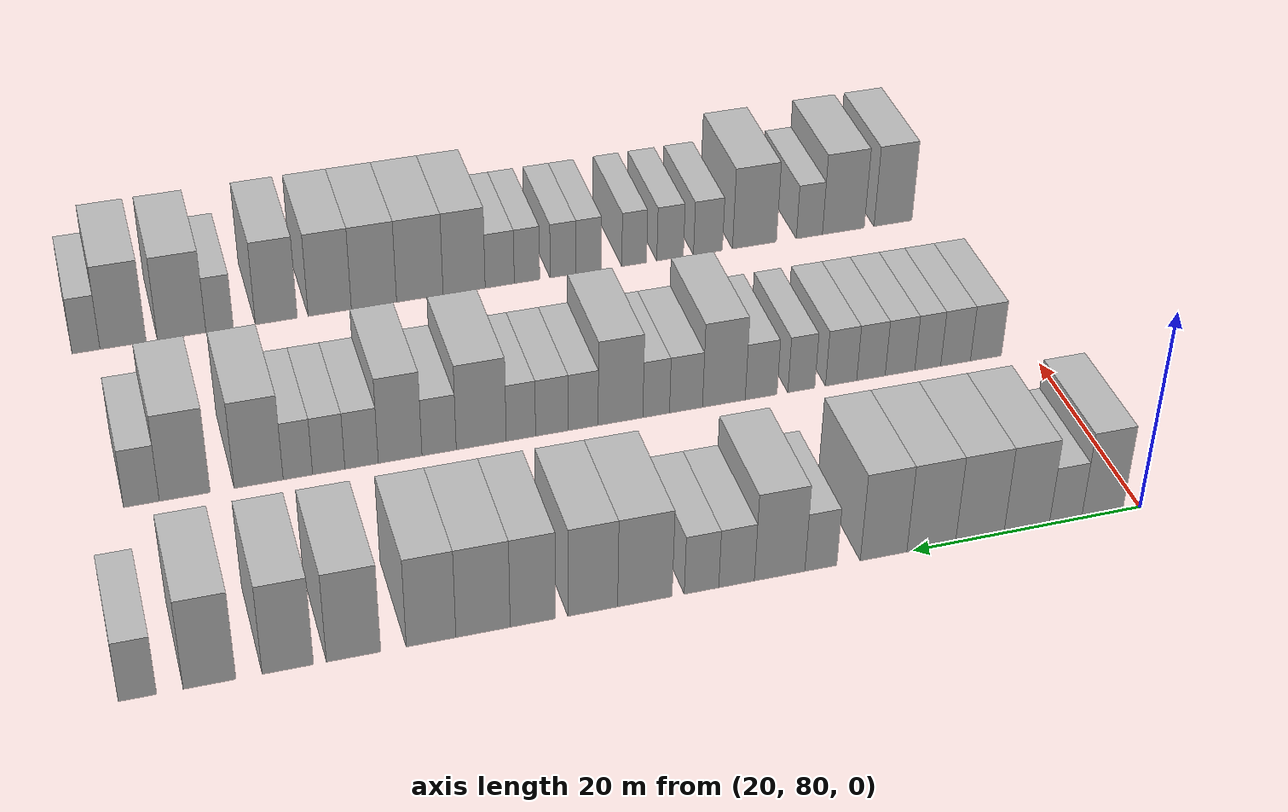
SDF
<sdf version="1.6">
 <world name="default">
  <model name="building_80">
   <static>1</static>
   <pose>25.0000 83.4481 0 0.000000 0.000000 0.000000</pose>
   <link name="link">
    <pose>0 0 4.50 0 0 0</pose>
    <collision name="collision"><geometry><box><size>10.0000 3.6763 9.0000</size></box></geometry></collision>
    <visual name="visual">
     <cast_shadows>0</cast_shadows>
     <geometry><box><size>10.0000 3.6763 9.0000</size></box></geometry>
     <material>
      <script>
       <uri>model://HANNAS_wall/materials/scripts</uri>
       <uri>model://HANNAS_wall/materials/textures</uri>
       <name>vrc/HANNAS_wall</name>
      </script>
     </material>
    </visual>
   </link>
  </model>
  <model name="building_81">
   <static>1</static>
   <pose>25.0000 86.7174 0 0.000000 0.000000 0.000000</pose>
   <link name="link">
    <pose>0 0 3.00 0 0 0</pose>
    <collision name="collision"><geometry><box><size>10.0000 2.8622 6.0000</size></box></geometry></collision>
    <visual name="visual">
     <cast_shadows>0</cast_shadows>
     <geometry><box><size>10.0000 2.8622 6.0000</size></box></geometry>
     <material>
      <script>
       <uri>model://HANNAS_wall/materials/scripts</uri>
       <uri>model://HANNAS_wall/materials/textures</uri>
       <name>vrc/HANNAS_wall</name>
      </script>
     </material>
    </visual>
   </link>
  </model>
  <model name="building_82">
   <static>1</static>
   <pose>25.0000 90.1437 0 0.000000 0.000000 0.000000</pose>
   <link name="link">
    <pose>0 0 4.50 0 0 0</pose>
    <collision name="collision"><geometry><box><size>10.0000 3.9904 9.0000</size></box></geometry></collision>
    <visual name="visual">
     <cast_shadows>0</cast_shadows>
     <geometry><box><size>10.0000 3.9904 9.0000</size></box></geometry>
     <material>
      <script>
       <uri>model://HANNAS_wall/materials/scripts</uri>
       <uri>model://HANNAS_wall/materials/textures</uri>
       <name>vrc/HANNAS_wall</name>
      </script>
     </material>
    </visual>
   </link>
  </model>
  <model name="building_83">
   <static>1</static>
   <pose>25.0000 94.2504 0 0.000000 0.000000 0.000000</pose>
   <link name="link">
    <pose>0 0 4.50 0 0 0</pose>
    <collision name="collision"><geometry><box><size>10.0000 4.2230 9.0000</size></box></geometry></collision>
    <visual name="visual">
     <cast_shadows>0</cast_shadows>
     <geometry><box><size>10.0000 4.2230 9.0000</size></box></geometry>
     <material>
      <script>
       <uri>model://HANNAS_wall/materials/scripts</uri>
       <uri>model://HANNAS_wall/materials/textures</uri>
       <name>vrc/HANNAS_wall</name>
      </script>
     </material>
    </visual>
   </link>
  </model>
  <model name="building_84">
   <static>1</static>
   <pose>25.0000 98.4675 0 0.000000 0.000000 0.000000</pose>
   <link name="link">
    <pose>0 0 4.50 0 0 0</pose>
    <collision name="collision"><geometry><box><size>10.0000 4.2113 9.0000</size></box></geometry></collision>
    <visual name="visual">
     <cast_shadows>0</cast_shadows>
     <geometry><box><size>10.0000 4.2113 9.0000</size></box></geometry>
     <material>
      <script>
       <uri>model://HANNAS_wall/materials/scripts</uri>
       <uri>model://HANNAS_wall/materials/textures</uri>
       <name>vrc/HANNAS_wall</name>
      </script>
     </material>
    </visual>
   </link>
  </model>
  <model name="building_85">
   <static>1</static>
   <pose>25.0000 102.5696 0 0.000000 0.000000 0.000000</pose>
   <link name="link">
    <pose>0 0 4.50 0 0 0</pose>
    <collision name="collision"><geometry><box><size>10.0000 3.9929 9.0000</size></box></geometry></collision>
    <visual name="visual">
     <cast_shadows>0</cast_shadows>
     <geometry><box><size>10.0000 3.9929 9.0000</size></box></geometry>
     <material>
      <script>
       <uri>model://HANNAS_wall/materials/scripts</uri>
       <uri>model://HANNAS_wall/materials/textures</uri>
       <name>vrc/HANNAS_wall</name>
      </script>
     </material>
    </visual>
   </link>
  </model>
  <model name="building_86">
   <static>1</static>
   <pose>25.0000 107.9220 0 0.000000 0.000000 0.000000</pose>
   <link name="link">
    <pose>0 0 3.00 0 0 0</pose>
    <collision name="collision"><geometry><box><size>10.0000 2.7118 6.0000</size></box></geometry></collision>
    <visual name="visual">
     <cast_shadows>0</cast_shadows>
     <geometry><box><size>10.0000 2.7118 6.0000</size></box></geometry>
     <material>
      <script>
       <uri>model://HANNAS_wall/materials/scripts</uri>
       <uri>model://HANNAS_wall/materials/textures</uri>
       <name>vrc/HANNAS_wall</name>
      </script>
     </material>
    </visual>
   </link>
  </model>
  <model name="building_87">
   <static>1</static>
   <pose>25.0000 111.4040 0 0.000000 0.000000 0.000000</pose>
   <link name="link">
    <pose>0 0 4.50 0 0 0</pose>
    <collision name="collision"><geometry><box><size>10.0000 4.2523 9.0000</size></box></geometry></collision>
    <visual name="visual">
     <cast_shadows>0</cast_shadows>
     <geometry><box><size>10.0000 4.2523 9.0000</size></box></geometry>
     <material>
      <script>
       <uri>model://HANNAS_wall/materials/scripts</uri>
       <uri>model://HANNAS_wall/materials/textures</uri>
       <name>vrc/HANNAS_wall</name>
      </script>
     </material>
    </visual>
   </link>
  </model>
  <model name="building_88">
   <static>1</static>
   <pose>25.0000 115.0146 0 0.000000 0.000000 0.000000</pose>
   <link name="link">
    <pose>0 0 3.00 0 0 0</pose>
    <collision name="collision"><geometry><box><size>10.0000 2.9690 6.0000</size></box></geometry></collision>
    <visual name="visual">
     <cast_shadows>0</cast_shadows>
     <geometry><box><size>10.0000 2.9690 6.0000</size></box></geometry>
     <material>
      <script>
       <uri>model://HANNAS_wall/materials/scripts</uri>
       <uri>model://HANNAS_wall/materials/textures</uri>
       <name>vrc/HANNAS_wall</name>
      </script>
     </material>
    </visual>
   </link>
  </model>
  <model name="building_89">
   <static>1</static>
   <pose>25.0000 117.9294 0 0.000000 0.000000 0.000000</pose>
   <link name="link">
    <pose>0 0 3.00 0 0 0</pose>
    <collision name="collision"><geometry><box><size>10.0000 2.8605 6.0000</size></box></geometry></collision>
    <visual name="visual">
     <cast_shadows>0</cast_shadows>
     <geometry><box><size>10.0000 2.8605 6.0000</size></box></geometry>
     <material>
      <script>
       <uri>model://HANNAS_wall/materials/scripts</uri>
       <uri>model://HANNAS_wall/materials/textures</uri>
       <name>vrc/HANNAS_wall</name>
      </script>
     </material>
    </visual>
   </link>
  </model>
  <model name="building_90">
   <static>1</static>
   <pose>25.0000 122.5967 0 0.000000 0.000000 0.000000</pose>
   <link name="link">
    <pose>0 0 4.50 0 0 0</pose>
    <collision name="collision"><geometry><box><size>10.0000 4.4741 9.0000</size></box></geometry></collision>
    <visual name="visual">
     <cast_shadows>0</cast_shadows>
     <geometry><box><size>10.0000 4.4741 9.0000</size></box></geometry>
     <material>
      <script>
       <uri>model://HANNAS_wall/materials/scripts</uri>
       <uri>model://HANNAS_wall/materials/textures</uri>
       <name>vrc/HANNAS_wall</name>
      </script>
     </material>
    </visual>
   </link>
  </model>
  <model name="building_91">
   <static>1</static>
   <pose>25.0000 126.8560 0 0.000000 0.000000 0.000000</pose>
   <link name="link">
    <pose>0 0 4.50 0 0 0</pose>
    <collision name="collision"><geometry><box><size>10.0000 4.0445 9.0000</size></box></geometry></collision>
    <visual name="visual">
     <cast_shadows>0</cast_shadows>
     <geometry><box><size>10.0000 4.0445 9.0000</size></box></geometry>
     <material>
      <script>
       <uri>model://HANNAS_wall/materials/scripts</uri>
       <uri>model://HANNAS_wall/materials/textures</uri>
       <name>vrc/HANNAS_wall</name>
      </script>
     </material>
    </visual>
   </link>
  </model>
  <model name="building_92">
   <static>1</static>
   <pose>25.0000 131.7005 0 0.000000 0.000000 0.000000</pose>
   <link name="link">
    <pose>0 0 4.50 0 0 0</pose>
    <collision name="collision"><geometry><box><size>10.0000 3.6444 9.0000</size></box></geometry></collision>
    <visual name="visual">
     <cast_shadows>0</cast_shadows>
     <geometry><box><size>10.0000 3.6444 9.0000</size></box></geometry>
     <material>
      <script>
       <uri>model://HANNAS_wall/materials/scripts</uri>
       <uri>model://HANNAS_wall/materials/textures</uri>
       <name>vrc/HANNAS_wall</name>
      </script>
     </material>
    </visual>
   </link>
  </model>
  <model name="building_93">
   <static>1</static>
   <pose>25.0000 135.6857 0 0.000000 0.000000 0.000000</pose>
   <link name="link">
    <pose>0 0 4.50 0 0 0</pose>
    <collision name="collision"><geometry><box><size>10.0000 4.3261 9.0000</size></box></geometry></collision>
    <visual name="visual">
     <cast_shadows>0</cast_shadows>
     <geometry><box><size>10.0000 4.3261 9.0000</size></box></geometry>
     <material>
      <script>
       <uri>model://HANNAS_wall/materials/scripts</uri>
       <uri>model://HANNAS_wall/materials/textures</uri>
       <name>vrc/HANNAS_wall</name>
      </script>
     </material>
    </visual>
   </link>
  </model>
  <model name="building_94">
   <static>1</static>
   <pose>25.0000 139.8107 0 0.000000 0.000000 0.000000</pose>
   <link name="link">
    <pose>0 0 4.50 0 0 0</pose>
    <collision name="collision"><geometry><box><size>10.0000 3.9239 9.0000</size></box></geometry></collision>
    <visual name="visual">
     <cast_shadows>0</cast_shadows>
     <geometry><box><size>10.0000 3.9239 9.0000</size></box></geometry>
     <material>
      <script>
       <uri>model://HANNAS_wall/materials/scripts</uri>
       <uri>model://HANNAS_wall/materials/textures</uri>
       <name>vrc/HANNAS_wall</name>
      </script>
     </material>
    </visual>
   </link>
  </model>
  <model name="building_95">
   <static>1</static>
   <pose>25.0000 145.8887 0 0.000000 0.000000 0.000000</pose>
   <link name="link">
    <pose>0 0 4.50 0 0 0</pose>
    <collision name="collision"><geometry><box><size>10.0000 4.2321 9.0000</size></box></geometry></collision>
    <visual name="visual">
     <cast_shadows>0</cast_shadows>
     <geometry><box><size>10.0000 4.2321 9.0000</size></box></geometry>
     <material>
      <script>
       <uri>model://HANNAS_wall/materials/scripts</uri>
       <uri>model://HANNAS_wall/materials/textures</uri>
       <name>vrc/HANNAS_wall</name>
      </script>
     </material>
    </visual>
   </link>
  </model>
  <model name="building_96">
   <static>1</static>
   <pose>25.0000 150.9834 0 0.000000 0.000000 0.000000</pose>
   <link name="link">
    <pose>0 0 4.50 0 0 0</pose>
    <collision name="collision"><geometry><box><size>10.0000 3.9573 9.0000</size></box></geometry></collision>
    <visual name="visual">
     <cast_shadows>0</cast_shadows>
     <geometry><box><size>10.0000 3.9573 9.0000</size></box></geometry>
     <material>
      <script>
       <uri>model://HANNAS_wall/materials/scripts</uri>
       <uri>model://HANNAS_wall/materials/textures</uri>
       <name>vrc/HANNAS_wall</name>
      </script>
     </material>
    </visual>
   </link>
  </model>
  <model name="building_97">
   <static>1</static>
   <pose>25.0000 156.9693 0 0.000000 0.000000 0.000000</pose>
   <link name="link">
    <pose>0 0 4.50 0 0 0</pose>
    <collision name="collision"><geometry><box><size>10.0000 4.0143 9.0000</size></box></geometry></collision>
    <visual name="visual">
     <cast_shadows>0</cast_shadows>
     <geometry><box><size>10.0000 4.0143 9.0000</size></box></geometry>
     <material>
      <script>
       <uri>model://HANNAS_wall/materials/scripts</uri>
       <uri>model://HANNAS_wall/materials/textures</uri>
       <name>vrc/HANNAS_wall</name>
      </script>
     </material>
    </visual>
   </link>
  </model>
  <model name="building_98">
   <static>1</static>
   <pose>25.0000 162.4192 0 0.000000 0.000000 0.000000</pose>
   <link name="link">
    <pose>0 0 3.00 0 0 0</pose>
    <collision name="collision"><geometry><box><size>10.0000 2.8855 6.0000</size></box></geometry></collision>
    <visual name="visual">
     <cast_shadows>0</cast_shadows>
     <geometry><box><size>10.0000 2.8855 6.0000</size></box></geometry>
     <material>
      <script>
       <uri>model://HANNAS_wall/materials/scripts</uri>
       <uri>model://HANNAS_wall/materials/textures</uri>
       <name>vrc/HANNAS_wall</name>
      </script>
     </material>
    </visual>
   </link>
  </model>
  <model name="building_210">
   <static>1</static>
   <pose>47.0000 84.3478 0 0.000000 0.000000 0.000000</pose>
   <link name="link">
    <pose>0 0 3.00 0 0 0</pose>
    <collision name="collision"><geometry><box><size>10.0000 2.9716 6.0000</size></box></geometry></collision>
    <visual name="visual">
     <cast_shadows>0</cast_shadows>
     <geometry><box><size>10.0000 2.9716 6.0000</size></box></geometry>
     <material>
      <script>
       <uri>model://HANNAS_wall/materials/scripts</uri>
       <uri>model://HANNAS_wall/materials/textures</uri>
       <name>vrc/HANNAS_wall</name>
      </script>
     </material>
    </visual>
   </link>
  </model>
  <model name="building_211">
   <static>1</static>
   <pose>47.0000 87.2506 0 0.000000 0.000000 0.000000</pose>
   <link name="link">
    <pose>0 0 3.00 0 0 0</pose>
    <collision name="collision"><geometry><box><size>10.0000 2.8339 6.0000</size></box></geometry></collision>
    <visual name="visual">
     <cast_shadows>0</cast_shadows>
     <geometry><box><size>10.0000 2.8339 6.0000</size></box></geometry>
     <material>
      <script>
       <uri>model://HANNAS_wall/materials/scripts</uri>
       <uri>model://HANNAS_wall/materials/textures</uri>
       <name>vrc/HANNAS_wall</name>
      </script>
     </material>
    </visual>
   </link>
  </model>
  <model name="building_212">
   <static>1</static>
   <pose>47.0000 89.8965 0 0.000000 0.000000 0.000000</pose>
   <link name="link">
    <pose>0 0 3.00 0 0 0</pose>
    <collision name="collision"><geometry><box><size>10.0000 2.4578 6.0000</size></box></geometry></collision>
    <visual name="visual">
     <cast_shadows>0</cast_shadows>
     <geometry><box><size>10.0000 2.4578 6.0000</size></box></geometry>
     <material>
      <script>
       <uri>model://HANNAS_wall/materials/scripts</uri>
       <uri>model://HANNAS_wall/materials/textures</uri>
       <name>vrc/HANNAS_wall</name>
      </script>
     </material>
    </visual>
   </link>
  </model>
  <model name="building_213">
   <static>1</static>
   <pose>47.0000 92.5211 0 0.000000 0.000000 0.000000</pose>
   <link name="link">
    <pose>0 0 3.00 0 0 0</pose>
    <collision name="collision"><geometry><box><size>10.0000 2.7914 6.0000</size></box></geometry></collision>
    <visual name="visual">
     <cast_shadows>0</cast_shadows>
     <geometry><box><size>10.0000 2.7914 6.0000</size></box></geometry>
     <material>
      <script>
       <uri>model://HANNAS_wall/materials/scripts</uri>
       <uri>model://HANNAS_wall/materials/textures</uri>
       <name>vrc/HANNAS_wall</name>
      </script>
     </material>
    </visual>
   </link>
  </model>
  <model name="building_214">
   <static>1</static>
   <pose>47.0000 95.2539 0 0.000000 0.000000 0.000000</pose>
   <link name="link">
    <pose>0 0 3.00 0 0 0</pose>
    <collision name="collision"><geometry><box><size>10.0000 2.6743 6.0000</size></box></geometry></collision>
    <visual name="visual">
     <cast_shadows>0</cast_shadows>
     <geometry><box><size>10.0000 2.6743 6.0000</size></box></geometry>
     <material>
      <script>
       <uri>model://HANNAS_wall/materials/scripts</uri>
       <uri>model://HANNAS_wall/materials/textures</uri>
       <name>vrc/HANNAS_wall</name>
      </script>
     </material>
    </visual>
   </link>
  </model>
  <model name="building_215">
   <static>1</static>
   <pose>47.0000 98.0430 0 0.000000 0.000000 0.000000</pose>
   <link name="link">
    <pose>0 0 3.00 0 0 0</pose>
    <collision name="collision"><geometry><box><size>10.0000 2.9041 6.0000</size></box></geometry></collision>
    <visual name="visual">
     <cast_shadows>0</cast_shadows>
     <geometry><box><size>10.0000 2.9041 6.0000</size></box></geometry>
     <material>
      <script>
       <uri>model://HANNAS_wall/materials/scripts</uri>
       <uri>model://HANNAS_wall/materials/textures</uri>
       <name>vrc/HANNAS_wall</name>
      </script>
     </material>
    </visual>
   </link>
  </model>
  <model name="building_216">
   <static>1</static>
   <pose>47.0000 101.7422 0 0.000000 0.000000 0.000000</pose>
   <link name="link">
    <pose>0 0 3.00 0 0 0</pose>
    <collision name="collision"><geometry><box><size>10.0000 2.4943 6.0000</size></box></geometry></collision>
    <visual name="visual">
     <cast_shadows>0</cast_shadows>
     <geometry><box><size>10.0000 2.4943 6.0000</size></box></geometry>
     <material>
      <script>
       <uri>model://HANNAS_wall/materials/scripts</uri>
       <uri>model://HANNAS_wall/materials/textures</uri>
       <name>vrc/HANNAS_wall</name>
      </script>
     </material>
    </visual>
   </link>
  </model>
  <model name="building_217">
   <static>1</static>
   <pose>47.0000 105.4523 0 0.000000 0.000000 0.000000</pose>
   <link name="link">
    <pose>0 0 3.00 0 0 0</pose>
    <collision name="collision"><geometry><box><size>10.0000 2.9258 6.0000</size></box></geometry></collision>
    <visual name="visual">
     <cast_shadows>0</cast_shadows>
     <geometry><box><size>10.0000 2.9258 6.0000</size></box></geometry>
     <material>
      <script>
       <uri>model://HANNAS_wall/materials/scripts</uri>
       <uri>model://HANNAS_wall/materials/textures</uri>
       <name>vrc/HANNAS_wall</name>
      </script>
     </material>
    </visual>
   </link>
  </model>
  <model name="building_218">
   <static>1</static>
   <pose>47.0000 108.8676 0 0.000000 0.000000 0.000000</pose>
   <link name="link">
    <pose>0 0 4.50 0 0 0</pose>
    <collision name="collision"><geometry><box><size>10.0000 3.9047 9.0000</size></box></geometry></collision>
    <visual name="visual">
     <cast_shadows>0</cast_shadows>
     <geometry><box><size>10.0000 3.9047 9.0000</size></box></geometry>
     <material>
      <script>
       <uri>model://HANNAS_wall/materials/scripts</uri>
       <uri>model://HANNAS_wall/materials/textures</uri>
       <name>vrc/HANNAS_wall</name>
      </script>
     </material>
    </visual>
   </link>
  </model>
  <model name="building_219">
   <static>1</static>
   <pose>47.0000 112.3148 0 0.000000 0.000000 0.000000</pose>
   <link name="link">
    <pose>0 0 3.00 0 0 0</pose>
    <collision name="collision"><geometry><box><size>10.0000 2.9899 6.0000</size></box></geometry></collision>
    <visual name="visual">
     <cast_shadows>0</cast_shadows>
     <geometry><box><size>10.0000 2.9899 6.0000</size></box></geometry>
     <material>
      <script>
       <uri>model://HANNAS_wall/materials/scripts</uri>
       <uri>model://HANNAS_wall/materials/textures</uri>
       <name>vrc/HANNAS_wall</name>
      </script>
     </material>
    </visual>
   </link>
  </model>
  <model name="building_220">
   <static>1</static>
   <pose>47.0000 115.0148 0 0.000000 0.000000 0.000000</pose>
   <link name="link">
    <pose>0 0 3.00 0 0 0</pose>
    <collision name="collision"><geometry><box><size>10.0000 2.4101 6.0000</size></box></geometry></collision>
    <visual name="visual">
     <cast_shadows>0</cast_shadows>
     <geometry><box><size>10.0000 2.4101 6.0000</size></box></geometry>
     <material>
      <script>
       <uri>model://HANNAS_wall/materials/scripts</uri>
       <uri>model://HANNAS_wall/materials/textures</uri>
       <name>vrc/HANNAS_wall</name>
      </script>
     </material>
    </visual>
   </link>
  </model>
  <model name="building_221">
   <static>1</static>
   <pose>47.0000 118.2244 0 0.000000 0.000000 0.000000</pose>
   <link name="link">
    <pose>0 0 4.50 0 0 0</pose>
    <collision name="collision"><geometry><box><size>10.0000 4.0092 9.0000</size></box></geometry></collision>
    <visual name="visual">
     <cast_shadows>0</cast_shadows>
     <geometry><box><size>10.0000 4.0092 9.0000</size></box></geometry>
     <material>
      <script>
       <uri>model://HANNAS_wall/materials/scripts</uri>
       <uri>model://HANNAS_wall/materials/textures</uri>
       <name>vrc/HANNAS_wall</name>
      </script>
     </material>
    </visual>
   </link>
  </model>
  <model name="building_222">
   <static>1</static>
   <pose>47.0000 121.5536 0 0.000000 0.000000 0.000000</pose>
   <link name="link">
    <pose>0 0 3.00 0 0 0</pose>
    <collision name="collision"><geometry><box><size>10.0000 2.6492 6.0000</size></box></geometry></collision>
    <visual name="visual">
     <cast_shadows>0</cast_shadows>
     <geometry><box><size>10.0000 2.6492 6.0000</size></box></geometry>
     <material>
      <script>
       <uri>model://HANNAS_wall/materials/scripts</uri>
       <uri>model://HANNAS_wall/materials/textures</uri>
       <name>vrc/HANNAS_wall</name>
      </script>
     </material>
    </visual>
   </link>
  </model>
  <model name="building_223">
   <static>1</static>
   <pose>47.0000 124.3264 0 0.000000 0.000000 0.000000</pose>
   <link name="link">
    <pose>0 0 3.00 0 0 0</pose>
    <collision name="collision"><geometry><box><size>10.0000 2.8962 6.0000</size></box></geometry></collision>
    <visual name="visual">
     <cast_shadows>0</cast_shadows>
     <geometry><box><size>10.0000 2.8962 6.0000</size></box></geometry>
     <material>
      <script>
       <uri>model://HANNAS_wall/materials/scripts</uri>
       <uri>model://HANNAS_wall/materials/textures</uri>
       <name>vrc/HANNAS_wall</name>
      </script>
     </material>
    </visual>
   </link>
  </model>
  <model name="building_224">
   <static>1</static>
   <pose>47.0000 127.0630 0 0.000000 0.000000 0.000000</pose>
   <link name="link">
    <pose>0 0 3.00 0 0 0</pose>
    <collision name="collision"><geometry><box><size>10.0000 2.5771 6.0000</size></box></geometry></collision>
    <visual name="visual">
     <cast_shadows>0</cast_shadows>
     <geometry><box><size>10.0000 2.5771 6.0000</size></box></geometry>
     <material>
      <script>
       <uri>model://HANNAS_wall/materials/scripts</uri>
       <uri>model://HANNAS_wall/materials/textures</uri>
       <name>vrc/HANNAS_wall</name>
      </script>
     </material>
    </visual>
   </link>
  </model>
  <model name="building_225">
   <static>1</static>
   <pose>47.0000 130.5362 0 0.000000 0.000000 0.000000</pose>
   <link name="link">
    <pose>0 0 4.50 0 0 0</pose>
    <collision name="collision"><geometry><box><size>10.0000 4.3693 9.0000</size></box></geometry></collision>
    <visual name="visual">
     <cast_shadows>0</cast_shadows>
     <geometry><box><size>10.0000 4.3693 9.0000</size></box></geometry>
     <material>
      <script>
       <uri>model://HANNAS_wall/materials/scripts</uri>
       <uri>model://HANNAS_wall/materials/textures</uri>
       <name>vrc/HANNAS_wall</name>
      </script>
     </material>
    </visual>
   </link>
  </model>
  <model name="building_226">
   <static>1</static>
   <pose>47.0000 134.2073 0 0.000000 0.000000 0.000000</pose>
   <link name="link">
    <pose>0 0 3.00 0 0 0</pose>
    <collision name="collision"><geometry><box><size>10.0000 2.9730 6.0000</size></box></geometry></collision>
    <visual name="visual">
     <cast_shadows>0</cast_shadows>
     <geometry><box><size>10.0000 2.9730 6.0000</size></box></geometry>
     <material>
      <script>
       <uri>model://HANNAS_wall/materials/scripts</uri>
       <uri>model://HANNAS_wall/materials/textures</uri>
       <name>vrc/HANNAS_wall</name>
      </script>
     </material>
    </visual>
   </link>
  </model>
  <model name="building_227">
   <static>1</static>
   <pose>47.0000 137.5719 0 0.000000 0.000000 0.000000</pose>
   <link name="link">
    <pose>0 0 4.50 0 0 0</pose>
    <collision name="collision"><geometry><box><size>10.0000 3.7562 9.0000</size></box></geometry></collision>
    <visual name="visual">
     <cast_shadows>0</cast_shadows>
     <geometry><box><size>10.0000 3.7562 9.0000</size></box></geometry>
     <material>
      <script>
       <uri>model://HANNAS_wall/materials/scripts</uri>
       <uri>model://HANNAS_wall/materials/textures</uri>
       <name>vrc/HANNAS_wall</name>
      </script>
     </material>
    </visual>
   </link>
  </model>
  <model name="building_228">
   <static>1</static>
   <pose>47.0000 140.8827 0 0.000000 0.000000 0.000000</pose>
   <link name="link">
    <pose>0 0 3.00 0 0 0</pose>
    <collision name="collision"><geometry><box><size>10.0000 2.8653 6.0000</size></box></geometry></collision>
    <visual name="visual">
     <cast_shadows>0</cast_shadows>
     <geometry><box><size>10.0000 2.8653 6.0000</size></box></geometry>
     <material>
      <script>
       <uri>model://HANNAS_wall/materials/scripts</uri>
       <uri>model://HANNAS_wall/materials/textures</uri>
       <name>vrc/HANNAS_wall</name>
      </script>
     </material>
    </visual>
   </link>
  </model>
  <model name="building_229">
   <static>1</static>
   <pose>47.0000 143.6878 0 0.000000 0.000000 0.000000</pose>
   <link name="link">
    <pose>0 0 3.00 0 0 0</pose>
    <collision name="collision"><geometry><box><size>10.0000 2.7450 6.0000</size></box></geometry></collision>
    <visual name="visual">
     <cast_shadows>0</cast_shadows>
     <geometry><box><size>10.0000 2.7450 6.0000</size></box></geometry>
     <material>
      <script>
       <uri>model://HANNAS_wall/materials/scripts</uri>
       <uri>model://HANNAS_wall/materials/textures</uri>
       <name>vrc/HANNAS_wall</name>
      </script>
     </material>
    </visual>
   </link>
  </model>
  <model name="building_230">
   <static>1</static>
   <pose>47.0000 146.3057 0 0.000000 0.000000 0.000000</pose>
   <link name="link">
    <pose>0 0 3.00 0 0 0</pose>
    <collision name="collision"><geometry><box><size>10.0000 2.4907 6.0000</size></box></geometry></collision>
    <visual name="visual">
     <cast_shadows>0</cast_shadows>
     <geometry><box><size>10.0000 2.4907 6.0000</size></box></geometry>
     <material>
      <script>
       <uri>model://HANNAS_wall/materials/scripts</uri>
       <uri>model://HANNAS_wall/materials/textures</uri>
       <name>vrc/HANNAS_wall</name>
      </script>
     </material>
    </visual>
   </link>
  </model>
  <model name="building_231">
   <static>1</static>
   <pose>47.0000 149.6123 0 0.000000 0.000000 0.000000</pose>
   <link name="link">
    <pose>0 0 4.50 0 0 0</pose>
    <collision name="collision"><geometry><box><size>10.0000 4.1226 9.0000</size></box></geometry></collision>
    <visual name="visual">
     <cast_shadows>0</cast_shadows>
     <geometry><box><size>10.0000 4.1226 9.0000</size></box></geometry>
     <material>
      <script>
       <uri>model://HANNAS_wall/materials/scripts</uri>
       <uri>model://HANNAS_wall/materials/textures</uri>
       <name>vrc/HANNAS_wall</name>
      </script>
     </material>
    </visual>
   </link>
  </model>
  <model name="building_232">
   <static>1</static>
   <pose>47.0000 155.7840 0 0.000000 0.000000 0.000000</pose>
   <link name="link">
    <pose>0 0 4.50 0 0 0</pose>
    <collision name="collision"><geometry><box><size>10.0000 4.2209 9.0000</size></box></geometry></collision>
    <visual name="visual">
     <cast_shadows>0</cast_shadows>
     <geometry><box><size>10.0000 4.2209 9.0000</size></box></geometry>
     <material>
      <script>
       <uri>model://HANNAS_wall/materials/scripts</uri>
       <uri>model://HANNAS_wall/materials/textures</uri>
       <name>vrc/HANNAS_wall</name>
      </script>
     </material>
    </visual>
   </link>
  </model>
  <model name="building_233">
   <static>1</static>
   <pose>47.0000 159.3688 0 0.000000 0.000000 0.000000</pose>
   <link name="link">
    <pose>0 0 3.00 0 0 0</pose>
    <collision name="collision"><geometry><box><size>10.0000 2.9486 6.0000</size></box></geometry></collision>
    <visual name="visual">
     <cast_shadows>0</cast_shadows>
     <geometry><box><size>10.0000 2.9486 6.0000</size></box></geometry>
     <material>
      <script>
       <uri>model://HANNAS_wall/materials/scripts</uri>
       <uri>model://HANNAS_wall/materials/textures</uri>
       <name>vrc/HANNAS_wall</name>
      </script>
     </material>
    </visual>
   </link>
  </model>
  <model name="building_340">
   <static>1</static>
   <pose>69.0000 84.5901 0 0.000000 0.000000 0.000000</pose>
   <link name="link">
    <pose>0 0 4.50 0 0 0</pose>
    <collision name="collision"><geometry><box><size>10.0000 3.8777 9.0000</size></box></geometry></collision>
    <visual name="visual">
     <cast_shadows>0</cast_shadows>
     <geometry><box><size>10.0000 3.8777 9.0000</size></box></geometry>
     <material>
      <script>
       <uri>model://HANNAS_wall/materials/scripts</uri>
       <uri>model://HANNAS_wall/materials/textures</uri>
       <name>vrc/HANNAS_wall</name>
      </script>
     </material>
    </visual>
   </link>
  </model>
  <model name="building_341">
   <static>1</static>
   <pose>69.0000 89.6551 0 0.000000 0.000000 0.000000</pose>
   <link name="link">
    <pose>0 0 4.50 0 0 0</pose>
    <collision name="collision"><geometry><box><size>10.0000 4.2522 9.0000</size></box></geometry></collision>
    <visual name="visual">
     <cast_shadows>0</cast_shadows>
     <geometry><box><size>10.0000 4.2522 9.0000</size></box></geometry>
     <material>
      <script>
       <uri>model://HANNAS_wall/materials/scripts</uri>
       <uri>model://HANNAS_wall/materials/textures</uri>
       <name>vrc/HANNAS_wall</name>
      </script>
     </material>
    </visual>
   </link>
  </model>
  <model name="building_342">
   <static>1</static>
   <pose>69.0000 93.0974 0 0.000000 0.000000 0.000000</pose>
   <link name="link">
    <pose>0 0 3.00 0 0 0</pose>
    <collision name="collision"><geometry><box><size>10.0000 2.6325 6.0000</size></box></geometry></collision>
    <visual name="visual">
     <cast_shadows>0</cast_shadows>
     <geometry><box><size>10.0000 2.6325 6.0000</size></box></geometry>
     <material>
      <script>
       <uri>model://HANNAS_wall/materials/scripts</uri>
       <uri>model://HANNAS_wall/materials/textures</uri>
       <name>vrc/HANNAS_wall</name>
      </script>
     </material>
    </visual>
   </link>
  </model>
  <model name="building_343">
   <static>1</static>
   <pose>69.0000 98.6107 0 0.000000 0.000000 0.000000</pose>
   <link name="link">
    <pose>0 0 4.50 0 0 0</pose>
    <collision name="collision"><geometry><box><size>10.0000 4.3939 9.0000</size></box></geometry></collision>
    <visual name="visual">
     <cast_shadows>0</cast_shadows>
     <geometry><box><size>10.0000 4.3939 9.0000</size></box></geometry>
     <material>
      <script>
       <uri>model://HANNAS_wall/materials/scripts</uri>
       <uri>model://HANNAS_wall/materials/textures</uri>
       <name>vrc/HANNAS_wall</name>
      </script>
     </material>
    </visual>
   </link>
  </model>
  <model name="building_344">
   <static>1</static>
   <pose>69.0000 103.2405 0 0.000000 0.000000 0.000000</pose>
   <link name="link">
    <pose>0 0 3.00 0 0 0</pose>
    <collision name="collision"><geometry><box><size>10.0000 2.8658 6.0000</size></box></geometry></collision>
    <visual name="visual">
     <cast_shadows>0</cast_shadows>
     <geometry><box><size>10.0000 2.8658 6.0000</size></box></geometry>
     <material>
      <script>
       <uri>model://HANNAS_wall/materials/scripts</uri>
       <uri>model://HANNAS_wall/materials/textures</uri>
       <name>vrc/HANNAS_wall</name>
      </script>
     </material>
    </visual>
   </link>
  </model>
  <model name="building_345">
   <static>1</static>
   <pose>69.0000 106.9825 0 0.000000 0.000000 0.000000</pose>
   <link name="link">
    <pose>0 0 3.00 0 0 0</pose>
    <collision name="collision"><geometry><box><size>10.0000 2.6182 6.0000</size></box></geometry></collision>
    <visual name="visual">
     <cast_shadows>0</cast_shadows>
     <geometry><box><size>10.0000 2.6182 6.0000</size></box></geometry>
     <material>
      <script>
       <uri>model://HANNAS_wall/materials/scripts</uri>
       <uri>model://HANNAS_wall/materials/textures</uri>
       <name>vrc/HANNAS_wall</name>
      </script>
     </material>
    </visual>
   </link>
  </model>
  <model name="building_346">
   <static>1</static>
   <pose>69.0000 110.5075 0 0.000000 0.000000 0.000000</pose>
   <link name="link">
    <pose>0 0 3.00 0 0 0</pose>
    <collision name="collision"><geometry><box><size>10.0000 2.4317 6.0000</size></box></geometry></collision>
    <visual name="visual">
     <cast_shadows>0</cast_shadows>
     <geometry><box><size>10.0000 2.4317 6.0000</size></box></geometry>
     <material>
      <script>
       <uri>model://HANNAS_wall/materials/scripts</uri>
       <uri>model://HANNAS_wall/materials/textures</uri>
       <name>vrc/HANNAS_wall</name>
      </script>
     </material>
    </visual>
   </link>
  </model>
  <model name="building_347">
   <static>1</static>
   <pose>69.0000 114.9514 0 0.000000 0.000000 0.000000</pose>
   <link name="link">
    <pose>0 0 3.00 0 0 0</pose>
    <collision name="collision"><geometry><box><size>10.0000 2.4561 6.0000</size></box></geometry></collision>
    <visual name="visual">
     <cast_shadows>0</cast_shadows>
     <geometry><box><size>10.0000 2.4561 6.0000</size></box></geometry>
     <material>
      <script>
       <uri>model://HANNAS_wall/materials/scripts</uri>
       <uri>model://HANNAS_wall/materials/textures</uri>
       <name>vrc/HANNAS_wall</name>
      </script>
     </material>
    </visual>
   </link>
  </model>
  <model name="building_348">
   <static>1</static>
   <pose>69.0000 117.4221 0 0.000000 0.000000 0.000000</pose>
   <link name="link">
    <pose>0 0 3.00 0 0 0</pose>
    <collision name="collision"><geometry><box><size>10.0000 2.4853 6.0000</size></box></geometry></collision>
    <visual name="visual">
     <cast_shadows>0</cast_shadows>
     <geometry><box><size>10.0000 2.4853 6.0000</size></box></geometry>
     <material>
      <script>
       <uri>model://HANNAS_wall/materials/scripts</uri>
       <uri>model://HANNAS_wall/materials/textures</uri>
       <name>vrc/HANNAS_wall</name>
      </script>
     </material>
    </visual>
   </link>
  </model>
  <model name="building_349">
   <static>1</static>
   <pose>69.0000 120.8814 0 0.000000 0.000000 0.000000</pose>
   <link name="link">
    <pose>0 0 3.00 0 0 0</pose>
    <collision name="collision"><geometry><box><size>10.0000 2.4334 6.0000</size></box></geometry></collision>
    <visual name="visual">
     <cast_shadows>0</cast_shadows>
     <geometry><box><size>10.0000 2.4334 6.0000</size></box></geometry>
     <material>
      <script>
       <uri>model://HANNAS_wall/materials/scripts</uri>
       <uri>model://HANNAS_wall/materials/textures</uri>
       <name>vrc/HANNAS_wall</name>
      </script>
     </material>
    </visual>
   </link>
  </model>
  <model name="building_350">
   <static>1</static>
   <pose>69.0000 123.4873 0 0.000000 0.000000 0.000000</pose>
   <link name="link">
    <pose>0 0 3.00 0 0 0</pose>
    <collision name="collision"><geometry><box><size>10.0000 2.7784 6.0000</size></box></geometry></collision>
    <visual name="visual">
     <cast_shadows>0</cast_shadows>
     <geometry><box><size>10.0000 2.7784 6.0000</size></box></geometry>
     <material>
      <script>
       <uri>model://HANNAS_wall/materials/scripts</uri>
       <uri>model://HANNAS_wall/materials/textures</uri>
       <name>vrc/HANNAS_wall</name>
      </script>
     </material>
    </visual>
   </link>
  </model>
  <model name="building_351">
   <static>1</static>
   <pose>69.0000 126.8710 0 0.000000 0.000000 0.000000</pose>
   <link name="link">
    <pose>0 0 4.50 0 0 0</pose>
    <collision name="collision"><geometry><box><size>10.0000 3.9889 9.0000</size></box></geometry></collision>
    <visual name="visual">
     <cast_shadows>0</cast_shadows>
     <geometry><box><size>10.0000 3.9889 9.0000</size></box></geometry>
     <material>
      <script>
       <uri>model://HANNAS_wall/materials/scripts</uri>
       <uri>model://HANNAS_wall/materials/textures</uri>
       <name>vrc/HANNAS_wall</name>
      </script>
     </material>
    </visual>
   </link>
  </model>
  <model name="building_352">
   <static>1</static>
   <pose>69.0000 131.0522 0 0.000000 0.000000 0.000000</pose>
   <link name="link">
    <pose>0 0 4.50 0 0 0</pose>
    <collision name="collision"><geometry><box><size>10.0000 4.3736 9.0000</size></box></geometry></collision>
    <visual name="visual">
     <cast_shadows>0</cast_shadows>
     <geometry><box><size>10.0000 4.3736 9.0000</size></box></geometry>
     <material>
      <script>
       <uri>model://HANNAS_wall/materials/scripts</uri>
       <uri>model://HANNAS_wall/materials/textures</uri>
       <name>vrc/HANNAS_wall</name>
      </script>
     </material>
    </visual>
   </link>
  </model>
  <model name="building_353">
   <static>1</static>
   <pose>69.0000 135.3486 0 0.000000 0.000000 0.000000</pose>
   <link name="link">
    <pose>0 0 4.50 0 0 0</pose>
    <collision name="collision"><geometry><box><size>10.0000 4.2191 9.0000</size></box></geometry></collision>
    <visual name="visual">
     <cast_shadows>0</cast_shadows>
     <geometry><box><size>10.0000 4.2191 9.0000</size></box></geometry>
     <material>
      <script>
       <uri>model://HANNAS_wall/materials/scripts</uri>
       <uri>model://HANNAS_wall/materials/textures</uri>
       <name>vrc/HANNAS_wall</name>
      </script>
     </material>
    </visual>
   </link>
  </model>
  <model name="building_354">
   <static>1</static>
   <pose>69.0000 139.4590 0 0.000000 0.000000 0.000000</pose>
   <link name="link">
    <pose>0 0 4.50 0 0 0</pose>
    <collision name="collision"><geometry><box><size>10.0000 4.0018 9.0000</size></box></geometry></collision>
    <visual name="visual">
     <cast_shadows>0</cast_shadows>
     <geometry><box><size>10.0000 4.0018 9.0000</size></box></geometry>
     <material>
      <script>
       <uri>model://HANNAS_wall/materials/scripts</uri>
       <uri>model://HANNAS_wall/materials/textures</uri>
       <name>vrc/HANNAS_wall</name>
      </script>
     </material>
    </visual>
   </link>
  </model>
  <model name="building_355">
   <static>1</static>
   <pose>69.0000 144.3825 0 0.000000 0.000000 0.000000</pose>
   <link name="link">
    <pose>0 0 4.50 0 0 0</pose>
    <collision name="collision"><geometry><box><size>10.0000 3.8454 9.0000</size></box></geometry></collision>
    <visual name="visual">
     <cast_shadows>0</cast_shadows>
     <geometry><box><size>10.0000 3.8454 9.0000</size></box></geometry>
     <material>
      <script>
       <uri>model://HANNAS_wall/materials/scripts</uri>
       <uri>model://HANNAS_wall/materials/textures</uri>
       <name>vrc/HANNAS_wall</name>
      </script>
     </material>
    </visual>
   </link>
  </model>
  <model name="building_356">
   <static>1</static>
   <pose>69.0000 149.5537 0 0.000000 0.000000 0.000000</pose>
   <link name="link">
    <pose>0 0 3.00 0 0 0</pose>
    <collision name="collision"><geometry><box><size>10.0000 2.4970 6.0000</size></box></geometry></collision>
    <visual name="visual">
     <cast_shadows>0</cast_shadows>
     <geometry><box><size>10.0000 2.4970 6.0000</size></box></geometry>
     <material>
      <script>
       <uri>model://HANNAS_wall/materials/scripts</uri>
       <uri>model://HANNAS_wall/materials/textures</uri>
       <name>vrc/HANNAS_wall</name>
      </script>
     </material>
    </visual>
   </link>
  </model>
  <model name="building_357">
   <static>1</static>
   <pose>69.0000 152.9950 0 0.000000 0.000000 0.000000</pose>
   <link name="link">
    <pose>0 0 4.50 0 0 0</pose>
    <collision name="collision"><geometry><box><size>10.0000 4.3855 9.0000</size></box></geometry></collision>
    <visual name="visual">
     <cast_shadows>0</cast_shadows>
     <geometry><box><size>10.0000 4.3855 9.0000</size></box></geometry>
     <material>
      <script>
       <uri>model://HANNAS_wall/materials/scripts</uri>
       <uri>model://HANNAS_wall/materials/textures</uri>
       <name>vrc/HANNAS_wall</name>
      </script>
     </material>
    </visual>
   </link>
  </model>
  <model name="building_358">
   <static>1</static>
   <pose>69.0000 158.2527 0 0.000000 0.000000 0.000000</pose>
   <link name="link">
    <pose>0 0 4.50 0 0 0</pose>
    <collision name="collision"><geometry><box><size>10.0000 4.1300 9.0000</size></box></geometry></collision>
    <visual name="visual">
     <cast_shadows>0</cast_shadows>
     <geometry><box><size>10.0000 4.1300 9.0000</size></box></geometry>
     <material>
      <script>
       <uri>model://HANNAS_wall/materials/scripts</uri>
       <uri>model://HANNAS_wall/materials/textures</uri>
       <name>vrc/HANNAS_wall</name>
      </script>
     </material>
    </visual>
   </link>
  </model>
  <model name="building_359">
   <static>1</static>
   <pose>69.0000 161.5579 0 0.000000 0.000000 0.000000</pose>
   <link name="link">
    <pose>0 0 3.00 0 0 0</pose>
    <collision name="collision"><geometry><box><size>10.0000 2.4804 6.0000</size></box></geometry></collision>
    <visual name="visual">
     <cast_shadows>0</cast_shadows>
     <geometry><box><size>10.0000 2.4804 6.0000</size></box></geometry>
     <material>
      <script>
       <uri>model://HANNAS_wall/materials/scripts</uri>
       <uri>model://HANNAS_wall/materials/textures</uri>
       <name>vrc/HANNAS_wall</name>
      </script>
     </material>
    </visual>
   </link>
  </model>
 </world>
</sdf>
